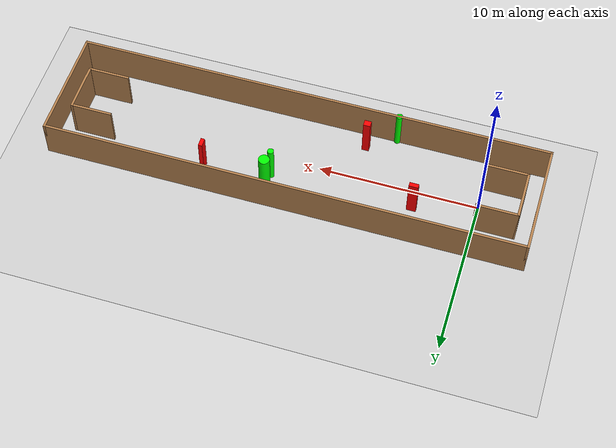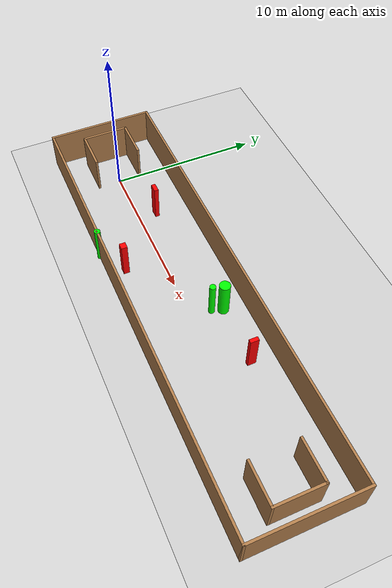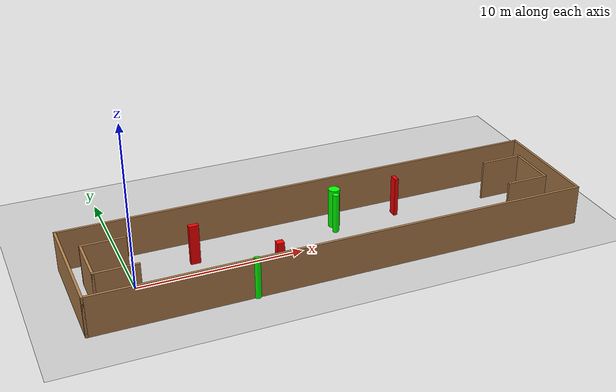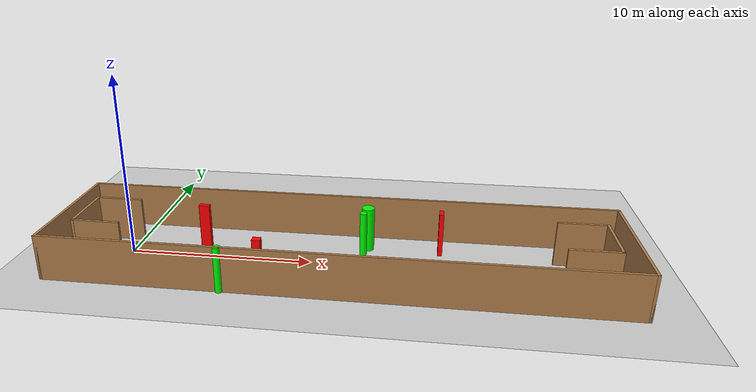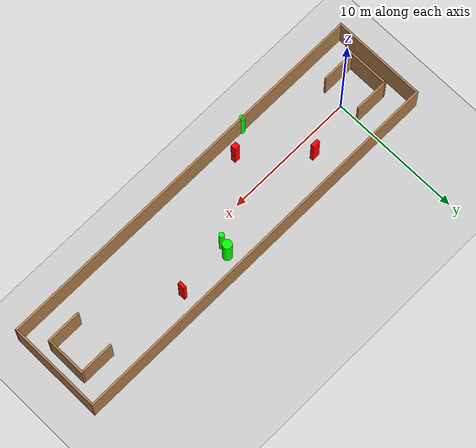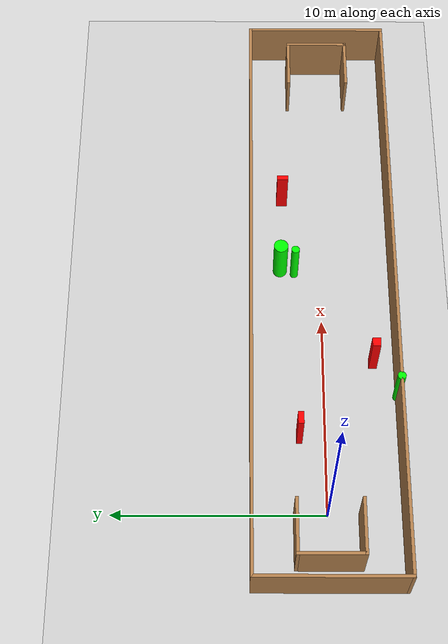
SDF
<sdf version="1.7">
 <world name="default">
  <light name="sun" type="directional">
   <pose>0 0 10 0 -0 0</pose>
   <diffuse>0.8 0.8 0.8 1</diffuse>
   <specular>0.2 0.2 0.2 1</specular>
   <attenuation>
    <range>1000</range>
    <constant>0.9</constant>
    <linear>0.01</linear>
    <quadratic>0.001</quadratic>
   </attenuation>
   <direction>-0.5 0.1 -0.9</direction>
   <spot><inner_angle>0</inner_angle><outer_angle>0</outer_angle><falloff>0</falloff></spot>
  </light>
  <model name="ground_plane">
   <static>1</static>
   <link name="link">
    <collision name="collision">
     <geometry><plane><normal>0 0 1</normal><size>100 100</size></plane></geometry>
     <surface>
      <contact><collide_bitmask>65535</collide_bitmask></contact>
      <friction><ode><mu>100</mu><mu2>50</mu2></ode></friction>
     </surface>
    </collision>
    <visual name="visual">
     <cast_shadows>0</cast_shadows>
     <geometry><plane><normal>0 0 1</normal><size>100 100</size></plane></geometry>
     <material>
      <script><uri>file://media/materials/scripts/gazebo.material</uri><name>Gazebo/Grey</name></script>
     </material>
    </visual>
   </link>
  </model>
  <gravity>0 0 -9.8</gravity>
  <magnetic_field>6e-06 2.3e-05 -4.2e-05</magnetic_field>
  <atmosphere type="adiabatic"/>
  <physics type="ode">
   <max_step_size>0.001</max_step_size>
   <real_time_factor>1</real_time_factor>
   <real_time_update_rate>1000</real_time_update_rate>
  </physics>
  <scene><ambient>0.4 0.4 0.4 1</ambient><background>0.7 0.7 0.7 1</background><shadows>1</shadows></scene>
  <spherical_coordinates>
   <surface_model>EARTH_WGS84</surface_model>
   <latitude_deg>0</latitude_deg>
   <longitude_deg>0</longitude_deg>
   <elevation>0</elevation>
   <heading_deg>0</heading_deg>
  </spherical_coordinates>
  <model name="my_base_walls">
   <link name="Wall_0">
    <collision name="Wall_0_Collision">
     <geometry><box><size>7.15 0.15 2.5</size></box></geometry>
     <pose>0 0 1.25 0 -0 0</pose>
    </collision>
    <visual name="Wall_0_Visual">
     <pose>0 0 1.25 0 -0 0</pose>
     <geometry><box><size>7.15 0.15 2.5</size></box></geometry>
     <material>
      <script><uri>file://media/materials/scripts/gazebo.material</uri><name>Gazebo/Wood</name></script>
      <ambient>1 1 1 1</ambient>
     </material>
     <meta><layer>0</layer></meta>
    </visual>
    <pose>-15 0 0 0 -0 1.5708</pose>
   </link>
   <link name="Wall_10">
    <collision name="Wall_10_Collision">
     <geometry><box><size>2.65 0.15 2.5</size></box></geometry>
     <pose>0 0 1.25 0 -0 0</pose>
    </collision>
    <visual name="Wall_10_Visual">
     <pose>0 0 1.25 0 -0 0</pose>
     <geometry><box><size>2.65 0.15 2.5</size></box></geometry>
     <material>
      <script><uri>file://media/materials/scripts/gazebo.material</uri><name>Gazebo/Wood</name></script>
      <ambient>1 1 1 1</ambient>
     </material>
     <meta><layer>0</layer></meta>
    </visual>
    <pose>-12.75 -1.5 0 0 -0 0</pose>
   </link>
   <link name="Wall_12">
    <collision name="Wall_12_Collision">
     <geometry><box><size>2.65 0.15 2.5</size></box></geometry>
     <pose>0 0 1.25 0 -0 0</pose>
    </collision>
    <visual name="Wall_12_Visual">
     <pose>0 0 1.25 0 -0 0</pose>
     <geometry><box><size>2.65 0.15 2.5</size></box></geometry>
     <material>
      <script><uri>file://media/materials/scripts/gazebo.material</uri><name>Gazebo/Wood</name></script>
      <ambient>1 1 1 1</ambient>
     </material>
     <meta><layer>0</layer></meta>
    </visual>
    <pose>-12.75 1.5 0 0 -0 0</pose>
   </link>
   <link name="Wall_14">
    <collision name="Wall_14_Collision">
     <geometry><box><size>3.15 0.15 2.5</size></box></geometry>
     <pose>0 0 1.25 0 -0 0</pose>
    </collision>
    <visual name="Wall_14_Visual">
     <pose>0 0 1.25 0 -0 0</pose>
     <geometry><box><size>3.15 0.15 2.5</size></box></geometry>
     <material>
      <script><uri>file://media/materials/scripts/gazebo.material</uri><name>Gazebo/Wood</name></script>
      <ambient>1 1 1 1</ambient>
     </material>
     <meta><layer>0</layer></meta>
    </visual>
    <pose>14 0 0 0 -0 -1.5708</pose>
   </link>
   <link name="Wall_15">
    <collision name="Wall_15_Collision">
     <geometry><box><size>2.65 0.15 2.5</size></box></geometry>
     <pose>0 0 1.25 0 -0 0</pose>
    </collision>
    <visual name="Wall_15_Visual">
     <pose>0 0 1.25 0 -0 0</pose>
     <geometry><box><size>2.65 0.15 2.5</size></box></geometry>
     <material>
      <script><uri>file://media/materials/scripts/gazebo.material</uri><name>Gazebo/Wood</name></script>
      <ambient>1 1 1 1</ambient>
     </material>
     <meta><layer>0</layer></meta>
    </visual>
    <pose>12.75 -1.5 0 0 -0 3.14159</pose>
   </link>
   <link name="Wall_17">
    <collision name="Wall_17_Collision">
     <geometry><box><size>2.65 0.15 2.5</size></box></geometry>
     <pose>0 0 1.25 0 -0 0</pose>
    </collision>
    <visual name="Wall_17_Visual">
     <pose>0 0 1.25 0 -0 0</pose>
     <geometry><box><size>2.65 0.15 2.5</size></box></geometry>
     <material>
      <script><uri>file://media/materials/scripts/gazebo.material</uri><name>Gazebo/Wood</name></script>
      <ambient>1 1 1 1</ambient>
     </material>
     <meta><layer>0</layer></meta>
    </visual>
    <pose>12.75 1.5 0 0 -0 3.14159</pose>
   </link>
   <link name="Wall_2">
    <collision name="Wall_2_Collision">
     <geometry><box><size>30.15 0.15 2.5</size></box></geometry>
     <pose>0 0 1.25 0 -0 0</pose>
    </collision>
    <visual name="Wall_2_Visual">
     <pose>0 0 1.25 0 -0 0</pose>
     <geometry><box><size>30.15 0.15 2.5</size></box></geometry>
     <material>
      <script><uri>file://media/materials/scripts/gazebo.material</uri><name>Gazebo/Wood</name></script>
      <ambient>1 1 1 1</ambient>
     </material>
     <meta><layer>0</layer></meta>
    </visual>
    <pose>-0 -3.5 0 0 -0 0</pose>
   </link>
   <link name="Wall_4">
    <collision name="Wall_4_Collision">
     <geometry><box><size>30.15 0.15 2.5</size></box></geometry>
     <pose>0 0 1.25 0 -0 0</pose>
    </collision>
    <visual name="Wall_4_Visual">
     <pose>0 0 1.25 0 -0 0</pose>
     <geometry><box><size>30.15 0.15 2.5</size></box></geometry>
     <material>
      <script><uri>file://media/materials/scripts/gazebo.material</uri><name>Gazebo/Wood</name></script>
      <ambient>1 1 1 1</ambient>
     </material>
     <meta><layer>0</layer></meta>
    </visual>
    <pose>-0 3.5 0 0 -0 0</pose>
   </link>
   <link name="Wall_6">
    <collision name="Wall_6_Collision">
     <geometry><box><size>7.15 0.15 2.5</size></box></geometry>
     <pose>0 0 1.25 0 -0 0</pose>
    </collision>
    <visual name="Wall_6_Visual">
     <pose>0 0 1.25 0 -0 0</pose>
     <geometry><box><size>7.15 0.15 2.5</size></box></geometry>
     <material>
      <script><uri>file://media/materials/scripts/gazebo.material</uri><name>Gazebo/Wood</name></script>
      <ambient>1 1 1 1</ambient>
     </material>
     <meta><layer>0</layer></meta>
    </visual>
    <pose>15 0 0 0 -0 -1.5708</pose>
   </link>
   <link name="Wall_9">
    <collision name="Wall_9_Collision">
     <geometry><box><size>3.15 0.15 2.5</size></box></geometry>
     <pose>0 0 1.25 0 -0 0</pose>
    </collision>
    <visual name="Wall_9_Visual">
     <pose>0 0 1.25 0 -0 0</pose>
     <geometry><box><size>3.15 0.15 2.5</size></box></geometry>
     <material>
      <script><uri>file://media/materials/scripts/gazebo.material</uri><name>Gazebo/Wood</name></script>
      <ambient>1 1 1 1</ambient>
     </material>
     <meta><layer>0</layer></meta>
    </visual>
    <pose>-14 0 0 0 -0 -1.5708</pose>
   </link>
   <static>1</static>
   <pose>11.5 0 0 0 -0 0</pose>
  </model>
  <model name="cylinder1">
   <static>1</static>
   <link name="link">
    <inertial>
     <mass>1</mass>
     <inertia><ixx>0.5</ixx><ixy>0</ixy><ixz>0</ixz><iyy>0.5</iyy><iyz>0</iyz><izz>1</izz></inertia>
    </inertial>
    <collision name="collision">
     <geometry><cylinder><radius>0.19592141305024777</radius><length>2.5</length></cylinder></geometry>
    </collision>
    <visual name="visual">
     <geometry><cylinder><radius>0.19592141305024777</radius><length>2.5</length></cylinder></geometry>
     <material>
      <ambient>0 1 0 1</ambient>
      <diffuse>0 1 0 1</diffuse>
      <specular>0.1 0.1 0.1 1</specular>
      <emissive>0 0 0 0</emissive>
     </material>
    </visual>
   </link>
   <pose>12.724724424767691 1.3228877122310534 1.25 0 0 0</pose>
  </model>
  <model name="cylinder2">
   <static>1</static>
   <link name="link">
    <inertial>
     <mass>1</mass>
     <inertia><ixx>0.5</ixx><ixy>0</ixy><ixz>0</ixz><iyy>0.5</iyy><iyz>0</iyz><izz>1</izz></inertia>
    </inertial>
    <collision name="collision">
     <geometry><cylinder><radius>0.19922031741076962</radius><length>2.5</length></cylinder></geometry>
    </collision>
    <visual name="visual">
     <geometry><cylinder><radius>0.19922031741076962</radius><length>2.5</length></cylinder></geometry>
     <material>
      <ambient>0 1 0 1</ambient>
      <diffuse>0 1 0 1</diffuse>
      <specular>0.1 0.1 0.1 1</specular>
      <emissive>0 0 0 0</emissive>
     </material>
    </visual>
   </link>
   <pose>5.964206371261502 -3.499451220366991 1.25 0 0 0</pose>
  </model>
  <model name="cylinder3">
   <static>1</static>
   <link name="link">
    <inertial>
     <mass>1</mass>
     <inertia><ixx>0.5</ixx><ixy>0</ixy><ixz>0</ixz><iyy>0.5</iyy><iyz>0</iyz><izz>1</izz></inertia>
    </inertial>
    <collision name="collision">
     <geometry><cylinder><radius>0.3484243382943407</radius><length>2.5</length></cylinder></geometry>
    </collision>
    <visual name="visual">
     <geometry><cylinder><radius>0.3484243382943407</radius><length>2.5</length></cylinder></geometry>
     <material>
      <ambient>0 1 0 1</ambient>
      <diffuse>0 1 0 1</diffuse>
      <specular>0.1 0.1 0.1 1</specular>
      <emissive>0 0 0 0</emissive>
     </material>
    </visual>
   </link>
   <pose>12.918285116099344 2.028160220699206 1.25 0 0 0</pose>
  </model>
  <model name="box1">
   <static>1</static>
   <link name="link">
    <inertial>
     <mass>1</mass>
     <inertia><ixx>0.083</ixx><ixy>0</ixy><ixz>0</ixz><iyy>0.083</iyy><iyz>0</iyz><izz>0.083</izz></inertia>
    </inertial>
    <collision name="collision">
     <geometry><box><size>0.4338055006838537 0.39117976552556705 2.5</size></box></geometry>
    </collision>
    <visual name="visual">
     <geometry><box><size>0.4338055006838537 0.39117976552556705 2.5</size></box></geometry>
     <material>
      <ambient>1 0 0 1</ambient>
      <diffuse>1 0 0 1</diffuse>
      <specular>0.1 0.1 0.1 1</specular>
      <emissive>0 0 0 0</emissive>
     </material>
    </visual>
    <sensor name="my_contact" type="contact">
     <contact><collision>box_collision</collision><topic>__default_topic__</topic></contact>
    </sensor>
   </link>
   <pose>7.705208334573323 -2.409695620299932 1.25 0 0 0</pose>
  </model>
  <model name="box2">
   <static>1</static>
   <link name="link">
    <inertial>
     <mass>1</mass>
     <inertia><ixx>0.083</ixx><ixy>0</ixy><ixz>0</ixz><iyy>0.083</iyy><iyz>0</iyz><izz>0.083</izz></inertia>
    </inertial>
    <collision name="collision">
     <geometry><box><size>0.24534412170840927 0.5446204373653112 2.5</size></box></geometry>
    </collision>
    <visual name="visual">
     <geometry><box><size>0.24534412170840927 0.5446204373653112 2.5</size></box></geometry>
     <material>
      <ambient>1 0 0 1</ambient>
      <diffuse>1 0 0 1</diffuse>
      <specular>0.1 0.1 0.1 1</specular>
      <emissive>0 0 0 0</emissive>
     </material>
    </visual>
    <sensor name="my_contact" type="contact">
     <contact><collision>box_collision</collision><topic>__default_topic__</topic></contact>
    </sensor>
   </link>
   <pose>16.9236449798441 1.903025876309174 1.25 0 0 0</pose>
  </model>
  <model name="box3">
   <static>1</static>
   <link name="link">
    <inertial>
     <mass>1</mass>
     <inertia><ixx>0.083</ixx><ixy>0</ixy><ixz>0</ixz><iyy>0.083</iyy><iyz>0</iyz><izz>0.083</izz></inertia>
    </inertial>
    <collision name="collision">
     <geometry><box><size>0.5878061360428999 0.27374690768965426 2.5</size></box></geometry>
    </collision>
    <visual name="visual">
     <geometry><box><size>0.5878061360428999 0.27374690768965426 2.5</size></box></geometry>
     <material>
      <ambient>1 0 0 1</ambient>
      <diffuse>1 0 0 1</diffuse>
      <specular>0.1 0.1 0.1 1</specular>
      <emissive>0 0 0 0</emissive>
     </material>
    </visual>
    <sensor name="my_contact" type="contact">
     <contact><collision>box_collision</collision><topic>__default_topic__</topic></contact>
    </sensor>
   </link>
   <pose>3.854656683346276 1.2261946536940158 1.25 0 0 0</pose>
  </model>
 </world>
</sdf>
